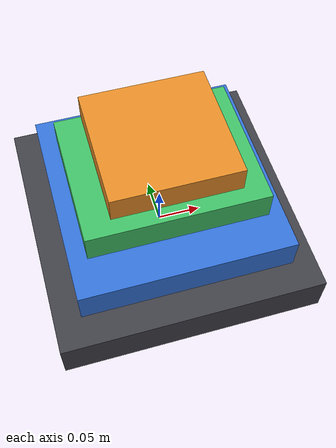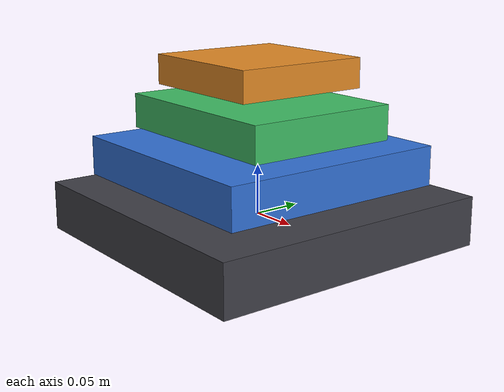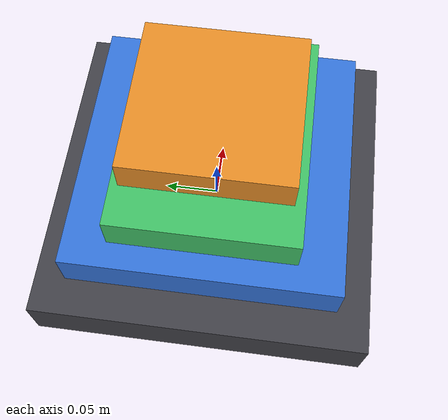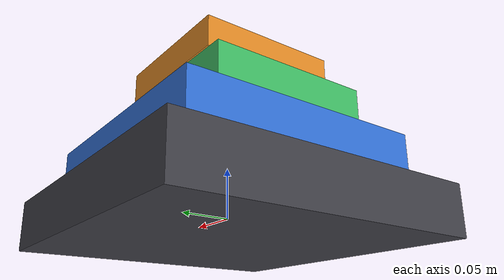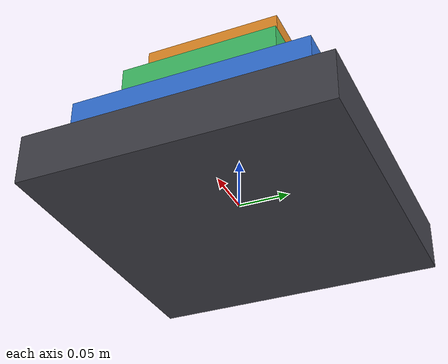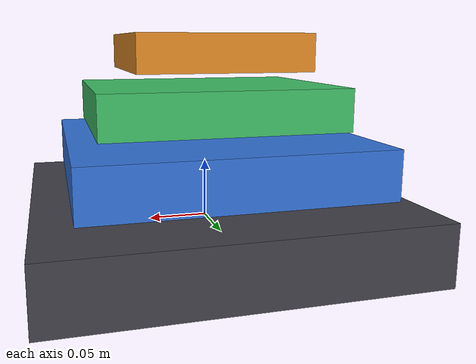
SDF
<?xml version="1.0"?>
<sdf version="1.9">
  <model name="three_axis_stage">
    <link name="base">
      <inertial>
        <mass>5.0</mass>
        <inertia>
          <ixx>0.0385</ixx><iyy>0.0385</iyy><izz>0.075</izz>
        </inertia>
      </inertial>
      <visual name="base_visual">
        <geometry><box><size>0.30 0.30 0.05</size></box></geometry>
        <material><diffuse>0.25 0.25 0.28 1</diffuse></material>
      </visual>
      <collision name="base_collision">
        <geometry><box><size>0.30 0.30 0.05</size></box></geometry>
      </collision>
    </link>

    <link name="x_carriage">
      <pose relative_to="base">0 0 0.055 0 0 0</pose>
      <inertial>
        <mass>2.0</mass>
        <inertia>
          <ixx>0.0097</ixx><iyy>0.0097</iyy><izz>0.0192</izz>
        </inertia>
      </inertial>
      <visual name="x_visual">
        <geometry><box><size>0.24 0.24 0.04</size></box></geometry>
        <material><diffuse>0.20 0.45 0.85 1</diffuse></material>
      </visual>
      <collision name="x_collision">
        <geometry><box><size>0.24 0.24 0.04</size></box></geometry>
      </collision>
    </link>

    <link name="y_carriage">
      <pose relative_to="x_carriage">0 0 0.045 0 0 0</pose>
      <inertial>
        <mass>1.5</mass>
        <inertia>
          <ixx>0.0046</ixx><iyy>0.0061</iyy><izz>0.0104</izz>
        </inertia>
      </inertial>
      <visual name="y_visual">
        <geometry><box><size>0.20 0.16 0.035</size></box></geometry>
        <material><diffuse>0.25 0.75 0.40 1</diffuse></material>
      </visual>
      <collision name="y_collision">
        <geometry><box><size>0.20 0.16 0.035</size></box></geometry>
      </collision>
    </link>

    <link name="z_carriage">
      <pose relative_to="y_carriage">0 0 0.045 0 0 0</pose>
      <inertial>
        <mass>1.0</mass>
        <inertia>
          <ixx>0.0021</ixx><iyy>0.0021</iyy><izz>0.0033</izz>
        </inertia>
      </inertial>
      <visual name="z_visual">
        <geometry><box><size>0.14 0.14 0.03</size></box></geometry>
        <material><diffuse>0.90 0.55 0.15 1</diffuse></material>
      </visual>
      <collision name="z_collision">
        <geometry><box><size>0.14 0.14 0.03</size></box></geometry>
      </collision>
    </link>

    <frame name="tool" attached_to="z_carriage">
      <pose>0 0 0.03 0 0 0</pose>
    </frame>

    <joint name="x" type="prismatic">
      <parent>base</parent><child>x_carriage</child>
      <axis>
        <xyz expressed_in="base">1 0 0</xyz>
        <limit><lower>-0.05</lower><upper>0.05</upper></limit>
      </axis>
    </joint>
    <joint name="y" type="prismatic">
      <parent>x_carriage</parent><child>y_carriage</child>
      <axis>
        <xyz expressed_in="x_carriage">0 1 0</xyz>
        <limit><lower>-0.04</lower><upper>0.04</upper></limit>
      </axis>
    </joint>
    <joint name="z" type="prismatic">
      <parent>y_carriage</parent><child>z_carriage</child>
      <axis>
        <xyz expressed_in="y_carriage">0 0 1</xyz>
        <limit><lower>-0.03</lower><upper>0.03</upper></limit>
      </axis>
    </joint>
  </model>
</sdf>
